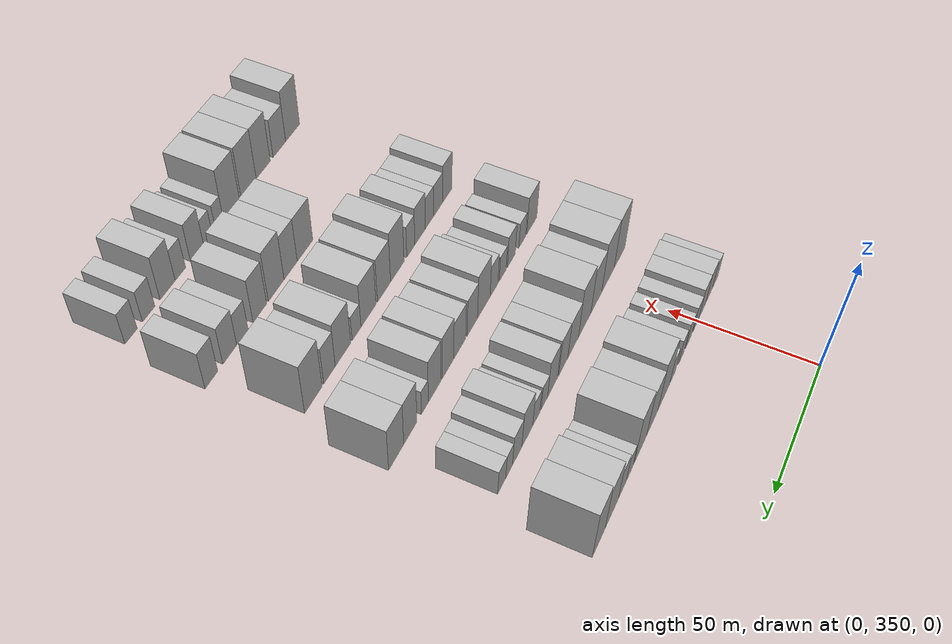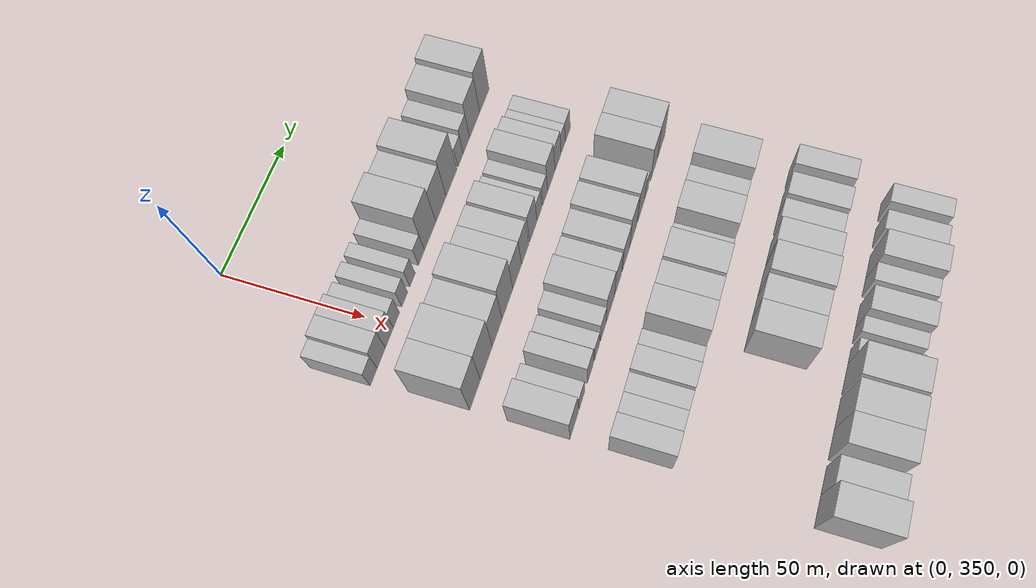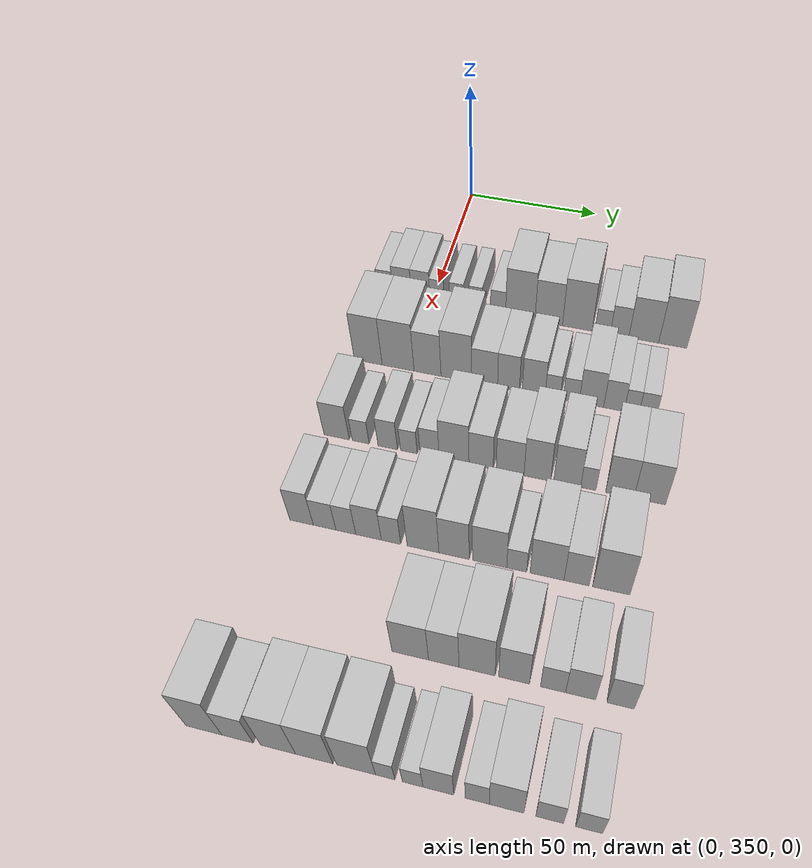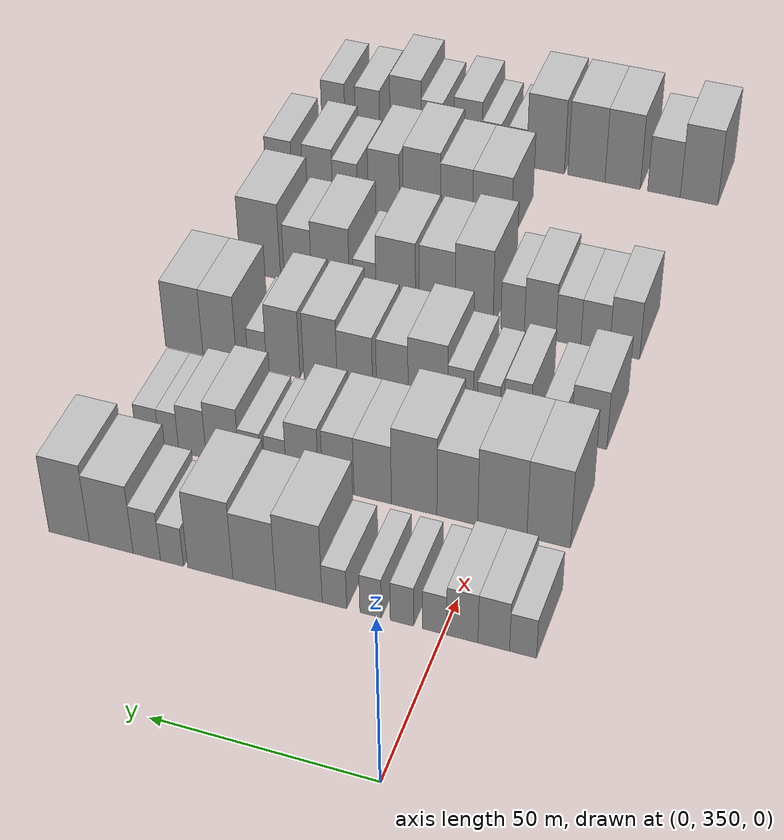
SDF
<sdf version="1.6">
 <world name="default">
  <model name="building_88">
   <static>1</static>
   <pose>50.0000 332.4617 0 0.000000 0.000000 0.000000</pose>
   <link name="link">
    <pose>0 0 6.00 0 0 0</pose>
    <collision name="collision"><geometry><box><size>20.0000 5.8812 12.0000</size></box></geometry></collision>
    <visual name="visual">
     <cast_shadows>0</cast_shadows>
     <geometry><box><size>20.0000 5.8812 12.0000</size></box></geometry>
     <material>
      <script>
       <uri>model://HANNAS_wall/materials/scripts</uri>
       <uri>model://HANNAS_wall/materials/textures</uri>
       <name>vrc/HANNAS_wall</name>
      </script>
     </material>
    </visual>
   </link>
  </model>
  <model name="building_89">
   <static>1</static>
   <pose>50.0000 338.8879 0 0.000000 0.000000 0.000000</pose>
   <link name="link">
    <pose>0 0 7.50 0 0 0</pose>
    <collision name="collision"><geometry><box><size>20.0000 6.9712 15.0000</size></box></geometry></collision>
    <visual name="visual">
     <cast_shadows>0</cast_shadows>
     <geometry><box><size>20.0000 6.9712 15.0000</size></box></geometry>
     <material>
      <script>
       <uri>model://HANNAS_wall/materials/scripts</uri>
       <uri>model://HANNAS_wall/materials/textures</uri>
       <name>vrc/HANNAS_wall</name>
      </script>
     </material>
    </visual>
   </link>
  </model>
  <model name="building_90">
   <static>1</static>
   <pose>50.0000 345.8396 0 0.000000 0.000000 0.000000</pose>
   <link name="link">
    <pose>0 0 7.50 0 0 0</pose>
    <collision name="collision"><geometry><box><size>20.0000 6.9321 15.0000</size></box></geometry></collision>
    <visual name="visual">
     <cast_shadows>0</cast_shadows>
     <geometry><box><size>20.0000 6.9321 15.0000</size></box></geometry>
     <material>
      <script>
       <uri>model://HANNAS_wall/materials/scripts</uri>
       <uri>model://HANNAS_wall/materials/textures</uri>
       <name>vrc/HANNAS_wall</name>
      </script>
     </material>
    </visual>
   </link>
  </model>
  <model name="building_91">
   <static>1</static>
   <pose>50.0000 351.9965 0 0.000000 0.000000 0.000000</pose>
   <link name="link">
    <pose>0 0 6.00 0 0 0</pose>
    <collision name="collision"><geometry><box><size>20.0000 5.3816 12.0000</size></box></geometry></collision>
    <visual name="visual">
     <cast_shadows>0</cast_shadows>
     <geometry><box><size>20.0000 5.3816 12.0000</size></box></geometry>
     <material>
      <script>
       <uri>model://HANNAS_wall/materials/scripts</uri>
       <uri>model://HANNAS_wall/materials/textures</uri>
       <name>vrc/HANNAS_wall</name>
      </script>
     </material>
    </visual>
   </link>
  </model>
  <model name="building_92">
   <static>1</static>
   <pose>50.0000 359.2964 0 0.000000 0.000000 0.000000</pose>
   <link name="link">
    <pose>0 0 6.00 0 0 0</pose>
    <collision name="collision"><geometry><box><size>20.0000 5.2183 12.0000</size></box></geometry></collision>
    <visual name="visual">
     <cast_shadows>0</cast_shadows>
     <geometry><box><size>20.0000 5.2183 12.0000</size></box></geometry>
     <material>
      <script>
       <uri>model://HANNAS_wall/materials/scripts</uri>
       <uri>model://HANNAS_wall/materials/textures</uri>
       <name>vrc/HANNAS_wall</name>
      </script>
     </material>
    </visual>
   </link>
  </model>
  <model name="building_93">
   <static>1</static>
   <pose>50.0000 366.3369 0 0.000000 0.000000 0.000000</pose>
   <link name="link">
    <pose>0 0 6.00 0 0 0</pose>
    <collision name="collision"><geometry><box><size>20.0000 4.8625 12.0000</size></box></geometry></collision>
    <visual name="visual">
     <cast_shadows>0</cast_shadows>
     <geometry><box><size>20.0000 4.8625 12.0000</size></box></geometry>
     <material>
      <script>
       <uri>model://HANNAS_wall/materials/scripts</uri>
       <uri>model://HANNAS_wall/materials/textures</uri>
       <name>vrc/HANNAS_wall</name>
      </script>
     </material>
    </visual>
   </link>
  </model>
  <model name="building_94">
   <static>1</static>
   <pose>50.0000 374.5605 0 0.000000 0.000000 0.000000</pose>
   <link name="link">
    <pose>0 0 6.00 0 0 0</pose>
    <collision name="collision"><geometry><box><size>20.0000 5.5847 12.0000</size></box></geometry></collision>
    <visual name="visual">
     <cast_shadows>0</cast_shadows>
     <geometry><box><size>20.0000 5.5847 12.0000</size></box></geometry>
     <material>
      <script>
       <uri>model://HANNAS_wall/materials/scripts</uri>
       <uri>model://HANNAS_wall/materials/textures</uri>
       <name>vrc/HANNAS_wall</name>
      </script>
     </material>
    </visual>
   </link>
  </model>
  <model name="building_95">
   <static>1</static>
   <pose>50.0000 382.7004 0 0.000000 0.000000 0.000000</pose>
   <link name="link">
    <pose>0 0 12.00 0 0 0</pose>
    <collision name="collision"><geometry><box><size>20.0000 10.6951 24.0000</size></box></geometry></collision>
    <visual name="visual">
     <cast_shadows>0</cast_shadows>
     <geometry><box><size>20.0000 10.6951 24.0000</size></box></geometry>
     <material>
      <script>
       <uri>model://HANNAS_wall/materials/scripts</uri>
       <uri>model://HANNAS_wall/materials/textures</uri>
       <name>vrc/HANNAS_wall</name>
      </script>
     </material>
    </visual>
   </link>
  </model>
  <model name="building_96">
   <static>1</static>
   <pose>50.0000 393.0219 0 0.000000 0.000000 0.000000</pose>
   <link name="link">
    <pose>0 0 10.50 0 0 0</pose>
    <collision name="collision"><geometry><box><size>20.0000 9.9479 21.0000</size></box></geometry></collision>
    <visual name="visual">
     <cast_shadows>0</cast_shadows>
     <geometry><box><size>20.0000 9.9479 21.0000</size></box></geometry>
     <material>
      <script>
       <uri>model://HANNAS_wall/materials/scripts</uri>
       <uri>model://HANNAS_wall/materials/textures</uri>
       <name>vrc/HANNAS_wall</name>
      </script>
     </material>
    </visual>
   </link>
  </model>
  <model name="building_97">
   <static>1</static>
   <pose>50.0000 403.3108 0 0.000000 0.000000 0.000000</pose>
   <link name="link">
    <pose>0 0 12.00 0 0 0</pose>
    <collision name="collision"><geometry><box><size>20.0000 10.6300 24.0000</size></box></geometry></collision>
    <visual name="visual">
     <cast_shadows>0</cast_shadows>
     <geometry><box><size>20.0000 10.6300 24.0000</size></box></geometry>
     <material>
      <script>
       <uri>model://HANNAS_wall/materials/scripts</uri>
       <uri>model://HANNAS_wall/materials/textures</uri>
       <name>vrc/HANNAS_wall</name>
      </script>
     </material>
    </visual>
   </link>
  </model>
  <model name="building_98">
   <static>1</static>
   <pose>50.0000 412.3672 0 0.000000 0.000000 0.000000</pose>
   <link name="link">
    <pose>0 0 6.00 0 0 0</pose>
    <collision name="collision"><geometry><box><size>20.0000 5.4829 12.0000</size></box></geometry></collision>
    <visual name="visual">
     <cast_shadows>0</cast_shadows>
     <geometry><box><size>20.0000 5.4829 12.0000</size></box></geometry>
     <material>
      <script>
       <uri>model://HANNAS_wall/materials/scripts</uri>
       <uri>model://HANNAS_wall/materials/textures</uri>
       <name>vrc/HANNAS_wall</name>
      </script>
     </material>
    </visual>
   </link>
  </model>
  <model name="building_99">
   <static>1</static>
   <pose>50.0000 418.3608 0 0.000000 0.000000 0.000000</pose>
   <link name="link">
    <pose>0 0 7.50 0 0 0</pose>
    <collision name="collision"><geometry><box><size>20.0000 6.5042 15.0000</size></box></geometry></collision>
    <visual name="visual">
     <cast_shadows>0</cast_shadows>
     <geometry><box><size>20.0000 6.5042 15.0000</size></box></geometry>
     <material>
      <script>
       <uri>model://HANNAS_wall/materials/scripts</uri>
       <uri>model://HANNAS_wall/materials/textures</uri>
       <name>vrc/HANNAS_wall</name>
      </script>
     </material>
    </visual>
   </link>
  </model>
  <model name="building_100">
   <static>1</static>
   <pose>50.0000 426.8564 0 0.000000 0.000000 0.000000</pose>
   <link name="link">
    <pose>0 0 10.50 0 0 0</pose>
    <collision name="collision"><geometry><box><size>20.0000 10.4868 21.0000</size></box></geometry></collision>
    <visual name="visual">
     <cast_shadows>0</cast_shadows>
     <geometry><box><size>20.0000 10.4868 21.0000</size></box></geometry>
     <material>
      <script>
       <uri>model://HANNAS_wall/materials/scripts</uri>
       <uri>model://HANNAS_wall/materials/textures</uri>
       <name>vrc/HANNAS_wall</name>
      </script>
     </material>
    </visual>
   </link>
  </model>
  <model name="building_101">
   <static>1</static>
   <pose>50.0000 437.0171 0 0.000000 0.000000 0.000000</pose>
   <link name="link">
    <pose>0 0 12.00 0 0 0</pose>
    <collision name="collision"><geometry><box><size>20.0000 9.8347 24.0000</size></box></geometry></collision>
    <visual name="visual">
     <cast_shadows>0</cast_shadows>
     <geometry><box><size>20.0000 9.8347 24.0000</size></box></geometry>
     <material>
      <script>
       <uri>model://HANNAS_wall/materials/scripts</uri>
       <uri>model://HANNAS_wall/materials/textures</uri>
       <name>vrc/HANNAS_wall</name>
      </script>
     </material>
    </visual>
   </link>
  </model>
  <model name="building_192">
   <static>1</static>
   <pose>82.0000 336.1384 0 0.000000 0.000000 0.000000</pose>
   <link name="link">
    <pose>0 0 12.00 0 0 0</pose>
    <collision name="collision"><geometry><box><size>20.0000 9.9993 24.0000</size></box></geometry></collision>
    <visual name="visual">
     <cast_shadows>0</cast_shadows>
     <geometry><box><size>20.0000 9.9993 24.0000</size></box></geometry>
     <material>
      <script>
       <uri>model://HANNAS_wall/materials/scripts</uri>
       <uri>model://HANNAS_wall/materials/textures</uri>
       <name>vrc/HANNAS_wall</name>
      </script>
     </material>
    </visual>
   </link>
  </model>
  <model name="building_193">
   <static>1</static>
   <pose>82.0000 346.8224 0 0.000000 0.000000 0.000000</pose>
   <link name="link">
    <pose>0 0 12.00 0 0 0</pose>
    <collision name="collision"><geometry><box><size>20.0000 11.3688 24.0000</size></box></geometry></collision>
    <visual name="visual">
     <cast_shadows>0</cast_shadows>
     <geometry><box><size>20.0000 11.3688 24.0000</size></box></geometry>
     <material>
      <script>
       <uri>model://HANNAS_wall/materials/scripts</uri>
       <uri>model://HANNAS_wall/materials/textures</uri>
       <name>vrc/HANNAS_wall</name>
      </script>
     </material>
    </visual>
   </link>
  </model>
  <model name="building_194">
   <static>1</static>
   <pose>82.0000 357.2764 0 0.000000 0.000000 0.000000</pose>
   <link name="link">
    <pose>0 0 10.50 0 0 0</pose>
    <collision name="collision"><geometry><box><size>20.0000 9.5392 21.0000</size></box></geometry></collision>
    <visual name="visual">
     <cast_shadows>0</cast_shadows>
     <geometry><box><size>20.0000 9.5392 21.0000</size></box></geometry>
     <material>
      <script>
       <uri>model://HANNAS_wall/materials/scripts</uri>
       <uri>model://HANNAS_wall/materials/textures</uri>
       <name>vrc/HANNAS_wall</name>
      </script>
     </material>
    </visual>
   </link>
  </model>
  <model name="building_195">
   <static>1</static>
   <pose>82.0000 367.4168 0 0.000000 0.000000 0.000000</pose>
   <link name="link">
    <pose>0 0 12.00 0 0 0</pose>
    <collision name="collision"><geometry><box><size>20.0000 10.7417 24.0000</size></box></geometry></collision>
    <visual name="visual">
     <cast_shadows>0</cast_shadows>
     <geometry><box><size>20.0000 10.7417 24.0000</size></box></geometry>
     <material>
      <script>
       <uri>model://HANNAS_wall/materials/scripts</uri>
       <uri>model://HANNAS_wall/materials/textures</uri>
       <name>vrc/HANNAS_wall</name>
      </script>
     </material>
    </visual>
   </link>
  </model>
  <model name="building_196">
   <static>1</static>
   <pose>82.0000 377.2480 0 0.000000 0.000000 0.000000</pose>
   <link name="link">
    <pose>0 0 9.00 0 0 0</pose>
    <collision name="collision"><geometry><box><size>20.0000 8.9206 18.0000</size></box></geometry></collision>
    <visual name="visual">
     <cast_shadows>0</cast_shadows>
     <geometry><box><size>20.0000 8.9206 18.0000</size></box></geometry>
     <material>
      <script>
       <uri>model://HANNAS_wall/materials/scripts</uri>
       <uri>model://HANNAS_wall/materials/textures</uri>
       <name>vrc/HANNAS_wall</name>
      </script>
     </material>
    </visual>
   </link>
  </model>
  <model name="building_197">
   <static>1</static>
   <pose>82.0000 385.4522 0 0.000000 0.000000 0.000000</pose>
   <link name="link">
    <pose>0 0 9.00 0 0 0</pose>
    <collision name="collision"><geometry><box><size>20.0000 7.4877 18.0000</size></box></geometry></collision>
    <visual name="visual">
     <cast_shadows>0</cast_shadows>
     <geometry><box><size>20.0000 7.4877 18.0000</size></box></geometry>
     <material>
      <script>
       <uri>model://HANNAS_wall/materials/scripts</uri>
       <uri>model://HANNAS_wall/materials/textures</uri>
       <name>vrc/HANNAS_wall</name>
      </script>
     </material>
    </visual>
   </link>
  </model>
  <model name="building_198">
   <static>1</static>
   <pose>82.0000 394.1133 0 0.000000 0.000000 0.000000</pose>
   <link name="link">
    <pose>0 0 9.00 0 0 0</pose>
    <collision name="collision"><geometry><box><size>20.0000 7.8347 18.0000</size></box></geometry></collision>
    <visual name="visual">
     <cast_shadows>0</cast_shadows>
     <geometry><box><size>20.0000 7.8347 18.0000</size></box></geometry>
     <material>
      <script>
       <uri>model://HANNAS_wall/materials/scripts</uri>
       <uri>model://HANNAS_wall/materials/textures</uri>
       <name>vrc/HANNAS_wall</name>
      </script>
     </material>
    </visual>
   </link>
  </model>
  <model name="building_199">
   <static>1</static>
   <pose>82.0000 400.5833 0 0.000000 0.000000 0.000000</pose>
   <link name="link">
    <pose>0 0 6.00 0 0 0</pose>
    <collision name="collision"><geometry><box><size>20.0000 5.1051 12.0000</size></box></geometry></collision>
    <visual name="visual">
     <cast_shadows>0</cast_shadows>
     <geometry><box><size>20.0000 5.1051 12.0000</size></box></geometry>
     <material>
      <script>
       <uri>model://HANNAS_wall/materials/scripts</uri>
       <uri>model://HANNAS_wall/materials/textures</uri>
       <name>vrc/HANNAS_wall</name>
      </script>
     </material>
    </visual>
   </link>
  </model>
  <model name="building_200">
   <static>1</static>
   <pose>82.0000 406.8288 0 0.000000 0.000000 0.000000</pose>
   <link name="link">
    <pose>0 0 6.00 0 0 0</pose>
    <collision name="collision"><geometry><box><size>20.0000 5.3860 12.0000</size></box></geometry></collision>
    <visual name="visual">
     <cast_shadows>0</cast_shadows>
     <geometry><box><size>20.0000 5.3860 12.0000</size></box></geometry>
     <material>
      <script>
       <uri>model://HANNAS_wall/materials/scripts</uri>
       <uri>model://HANNAS_wall/materials/textures</uri>
       <name>vrc/HANNAS_wall</name>
      </script>
     </material>
    </visual>
   </link>
  </model>
  <model name="building_201">
   <static>1</static>
   <pose>82.0000 413.6128 0 0.000000 0.000000 0.000000</pose>
   <link name="link">
    <pose>0 0 9.00 0 0 0</pose>
    <collision name="collision"><geometry><box><size>20.0000 8.1819 18.0000</size></box></geometry></collision>
    <visual name="visual">
     <cast_shadows>0</cast_shadows>
     <geometry><box><size>20.0000 8.1819 18.0000</size></box></geometry>
     <material>
      <script>
       <uri>model://HANNAS_wall/materials/scripts</uri>
       <uri>model://HANNAS_wall/materials/textures</uri>
       <name>vrc/HANNAS_wall</name>
      </script>
     </material>
    </visual>
   </link>
  </model>
  <model name="building_202">
   <static>1</static>
   <pose>82.0000 421.1309 0 0.000000 0.000000 0.000000</pose>
   <link name="link">
    <pose>0 0 7.50 0 0 0</pose>
    <collision name="collision"><geometry><box><size>20.0000 6.8543 15.0000</size></box></geometry></collision>
    <visual name="visual">
     <cast_shadows>0</cast_shadows>
     <geometry><box><size>20.0000 6.8543 15.0000</size></box></geometry>
     <material>
      <script>
       <uri>model://HANNAS_wall/materials/scripts</uri>
       <uri>model://HANNAS_wall/materials/textures</uri>
       <name>vrc/HANNAS_wall</name>
      </script>
     </material>
    </visual>
   </link>
  </model>
  <model name="building_203">
   <static>1</static>
   <pose>82.0000 426.9973 0 0.000000 0.000000 0.000000</pose>
   <link name="link">
    <pose>0 0 6.00 0 0 0</pose>
    <collision name="collision"><geometry><box><size>20.0000 4.8786 12.0000</size></box></geometry></collision>
    <visual name="visual">
     <cast_shadows>0</cast_shadows>
     <geometry><box><size>20.0000 4.8786 12.0000</size></box></geometry>
     <material>
      <script>
       <uri>model://HANNAS_wall/materials/scripts</uri>
       <uri>model://HANNAS_wall/materials/textures</uri>
       <name>vrc/HANNAS_wall</name>
      </script>
     </material>
    </visual>
   </link>
  </model>
  <model name="building_204">
   <static>1</static>
   <pose>82.0000 432.2888 0 0.000000 0.000000 0.000000</pose>
   <link name="link">
    <pose>0 0 6.00 0 0 0</pose>
    <collision name="collision"><geometry><box><size>20.0000 5.7044 12.0000</size></box></geometry></collision>
    <visual name="visual">
     <cast_shadows>0</cast_shadows>
     <geometry><box><size>20.0000 5.7044 12.0000</size></box></geometry>
     <material>
      <script>
       <uri>model://HANNAS_wall/materials/scripts</uri>
       <uri>model://HANNAS_wall/materials/textures</uri>
       <name>vrc/HANNAS_wall</name>
      </script>
     </material>
    </visual>
   </link>
  </model>
  <model name="building_313">
   <static>1</static>
   <pose>114.0000 335.7146 0 0.000000 0.000000 0.000000</pose>
   <link name="link">
    <pose>0 0 9.00 0 0 0</pose>
    <collision name="collision"><geometry><box><size>20.0000 8.5921 18.0000</size></box></geometry></collision>
    <visual name="visual">
     <cast_shadows>0</cast_shadows>
     <geometry><box><size>20.0000 8.5921 18.0000</size></box></geometry>
     <material>
      <script>
       <uri>model://HANNAS_wall/materials/scripts</uri>
       <uri>model://HANNAS_wall/materials/textures</uri>
       <name>vrc/HANNAS_wall</name>
      </script>
     </material>
    </visual>
   </link>
  </model>
  <model name="building_314">
   <static>1</static>
   <pose>114.0000 343.8473 0 0.000000 0.000000 0.000000</pose>
   <link name="link">
    <pose>0 0 6.00 0 0 0</pose>
    <collision name="collision"><geometry><box><size>20.0000 5.6732 12.0000</size></box></geometry></collision>
    <visual name="visual">
     <cast_shadows>0</cast_shadows>
     <geometry><box><size>20.0000 5.6732 12.0000</size></box></geometry>
     <material>
      <script>
       <uri>model://HANNAS_wall/materials/scripts</uri>
       <uri>model://HANNAS_wall/materials/textures</uri>
       <name>vrc/HANNAS_wall</name>
      </script>
     </material>
    </visual>
   </link>
  </model>
  <model name="building_315">
   <static>1</static>
   <pose>114.0000 352.9465 0 0.000000 0.000000 0.000000</pose>
   <link name="link">
    <pose>0 0 7.50 0 0 0</pose>
    <collision name="collision"><geometry><box><size>20.0000 6.5253 15.0000</size></box></geometry></collision>
    <visual name="visual">
     <cast_shadows>0</cast_shadows>
     <geometry><box><size>20.0000 6.5253 15.0000</size></box></geometry>
     <material>
      <script>
       <uri>model://HANNAS_wall/materials/scripts</uri>
       <uri>model://HANNAS_wall/materials/textures</uri>
       <name>vrc/HANNAS_wall</name>
      </script>
     </material>
    </visual>
   </link>
  </model>
  <model name="building_316">
   <static>1</static>
   <pose>114.0000 359.9876 0 0.000000 0.000000 0.000000</pose>
   <link name="link">
    <pose>0 0 6.00 0 0 0</pose>
    <collision name="collision"><geometry><box><size>20.0000 5.5569 12.0000</size></box></geometry></collision>
    <visual name="visual">
     <cast_shadows>0</cast_shadows>
     <geometry><box><size>20.0000 5.5569 12.0000</size></box></geometry>
     <material>
      <script>
       <uri>model://HANNAS_wall/materials/scripts</uri>
       <uri>model://HANNAS_wall/materials/textures</uri>
       <name>vrc/HANNAS_wall</name>
      </script>
     </material>
    </visual>
   </link>
  </model>
  <model name="building_317">
   <static>1</static>
   <pose>114.0000 366.8975 0 0.000000 0.000000 0.000000</pose>
   <link name="link">
    <pose>0 0 7.50 0 0 0</pose>
    <collision name="collision"><geometry><box><size>20.0000 6.2629 15.0000</size></box></geometry></collision>
    <visual name="visual">
     <cast_shadows>0</cast_shadows>
     <geometry><box><size>20.0000 6.2629 15.0000</size></box></geometry>
     <material>
      <script>
       <uri>model://HANNAS_wall/materials/scripts</uri>
       <uri>model://HANNAS_wall/materials/textures</uri>
       <name>vrc/HANNAS_wall</name>
      </script>
     </material>
    </visual>
   </link>
  </model>
  <model name="building_318">
   <static>1</static>
   <pose>114.0000 374.9000 0 0.000000 0.000000 0.000000</pose>
   <link name="link">
    <pose>0 0 10.50 0 0 0</pose>
    <collision name="collision"><geometry><box><size>20.0000 9.7422 21.0000</size></box></geometry></collision>
    <visual name="visual">
     <cast_shadows>0</cast_shadows>
     <geometry><box><size>20.0000 9.7422 21.0000</size></box></geometry>
     <material>
      <script>
       <uri>model://HANNAS_wall/materials/scripts</uri>
       <uri>model://HANNAS_wall/materials/textures</uri>
       <name>vrc/HANNAS_wall</name>
      </script>
     </material>
    </visual>
   </link>
  </model>
  <model name="building_319">
   <static>1</static>
   <pose>114.0000 383.6989 0 0.000000 0.000000 0.000000</pose>
   <link name="link">
    <pose>0 0 9.00 0 0 0</pose>
    <collision name="collision"><geometry><box><size>20.0000 7.8556 18.0000</size></box></geometry></collision>
    <visual name="visual">
     <cast_shadows>0</cast_shadows>
     <geometry><box><size>20.0000 7.8556 18.0000</size></box></geometry>
     <material>
      <script>
       <uri>model://HANNAS_wall/materials/scripts</uri>
       <uri>model://HANNAS_wall/materials/textures</uri>
       <name>vrc/HANNAS_wall</name>
      </script>
     </material>
    </visual>
   </link>
  </model>
  <model name="building_320">
   <static>1</static>
   <pose>114.0000 393.0754 0 0.000000 0.000000 0.000000</pose>
   <link name="link">
    <pose>0 0 9.00 0 0 0</pose>
    <collision name="collision"><geometry><box><size>20.0000 8.8974 18.0000</size></box></geometry></collision>
    <visual name="visual">
     <cast_shadows>0</cast_shadows>
     <geometry><box><size>20.0000 8.8974 18.0000</size></box></geometry>
     <material>
      <script>
       <uri>model://HANNAS_wall/materials/scripts</uri>
       <uri>model://HANNAS_wall/materials/textures</uri>
       <name>vrc/HANNAS_wall</name>
      </script>
     </material>
    </visual>
   </link>
  </model>
  <model name="building_321">
   <static>1</static>
   <pose>114.0000 401.7678 0 0.000000 0.000000 0.000000</pose>
   <link name="link">
    <pose>0 0 10.50 0 0 0</pose>
    <collision name="collision"><geometry><box><size>20.0000 8.4874 21.0000</size></box></geometry></collision>
    <visual name="visual">
     <cast_shadows>0</cast_shadows>
     <geometry><box><size>20.0000 8.4874 21.0000</size></box></geometry>
     <material>
      <script>
       <uri>model://HANNAS_wall/materials/scripts</uri>
       <uri>model://HANNAS_wall/materials/textures</uri>
       <name>vrc/HANNAS_wall</name>
      </script>
     </material>
    </visual>
   </link>
  </model>
  <model name="building_322">
   <static>1</static>
   <pose>114.0000 411.2692 0 0.000000 0.000000 0.000000</pose>
   <link name="link">
    <pose>0 0 10.50 0 0 0</pose>
    <collision name="collision"><geometry><box><size>20.0000 8.5153 21.0000</size></box></geometry></collision>
    <visual name="visual">
     <cast_shadows>0</cast_shadows>
     <geometry><box><size>20.0000 8.5153 21.0000</size></box></geometry>
     <material>
      <script>
       <uri>model://HANNAS_wall/materials/scripts</uri>
       <uri>model://HANNAS_wall/materials/textures</uri>
       <name>vrc/HANNAS_wall</name>
      </script>
     </material>
    </visual>
   </link>
  </model>
  <model name="building_323">
   <static>1</static>
   <pose>114.0000 417.9303 0 0.000000 0.000000 0.000000</pose>
   <link name="link">
    <pose>0 0 6.00 0 0 0</pose>
    <collision name="collision"><geometry><box><size>20.0000 4.8069 12.0000</size></box></geometry></collision>
    <visual name="visual">
     <cast_shadows>0</cast_shadows>
     <geometry><box><size>20.0000 4.8069 12.0000</size></box></geometry>
     <material>
      <script>
       <uri>model://HANNAS_wall/materials/scripts</uri>
       <uri>model://HANNAS_wall/materials/textures</uri>
       <name>vrc/HANNAS_wall</name>
      </script>
     </material>
    </visual>
   </link>
  </model>
  <model name="building_324">
   <static>1</static>
   <pose>114.0000 427.7049 0 0.000000 0.000000 0.000000</pose>
   <link name="link">
    <pose>0 0 10.50 0 0 0</pose>
    <collision name="collision"><geometry><box><size>20.0000 8.7421 21.0000</size></box></geometry></collision>
    <visual name="visual">
     <cast_shadows>0</cast_shadows>
     <geometry><box><size>20.0000 8.7421 21.0000</size></box></geometry>
     <material>
      <script>
       <uri>model://HANNAS_wall/materials/scripts</uri>
       <uri>model://HANNAS_wall/materials/textures</uri>
       <name>vrc/HANNAS_wall</name>
      </script>
     </material>
    </visual>
   </link>
  </model>
  <model name="building_325">
   <static>1</static>
   <pose>114.0000 436.9769 0 0.000000 0.000000 0.000000</pose>
   <link name="link">
    <pose>0 0 10.50 0 0 0</pose>
    <collision name="collision"><geometry><box><size>20.0000 9.8019 21.0000</size></box></geometry></collision>
    <visual name="visual">
     <cast_shadows>0</cast_shadows>
     <geometry><box><size>20.0000 9.8019 21.0000</size></box></geometry>
     <material>
      <script>
       <uri>model://HANNAS_wall/materials/scripts</uri>
       <uri>model://HANNAS_wall/materials/textures</uri>
       <name>vrc/HANNAS_wall</name>
      </script>
     </material>
    </visual>
   </link>
  </model>
  <model name="building_438">
   <static>1</static>
   <pose>146.0000 335.5271 0 0.000000 0.000000 0.000000</pose>
   <link name="link">
    <pose>0 0 9.00 0 0 0</pose>
    <collision name="collision"><geometry><box><size>20.0000 7.4844 18.0000</size></box></geometry></collision>
    <visual name="visual">
     <cast_shadows>0</cast_shadows>
     <geometry><box><size>20.0000 7.4844 18.0000</size></box></geometry>
     <material>
      <script>
       <uri>model://HANNAS_wall/materials/scripts</uri>
       <uri>model://HANNAS_wall/materials/textures</uri>
       <name>vrc/HANNAS_wall</name>
      </script>
     </material>
    </visual>
   </link>
  </model>
  <model name="building_439">
   <static>1</static>
   <pose>146.0000 342.8704 0 0.000000 0.000000 0.000000</pose>
   <link name="link">
    <pose>0 0 7.50 0 0 0</pose>
    <collision name="collision"><geometry><box><size>20.0000 7.2023 15.0000</size></box></geometry></collision>
    <visual name="visual">
     <cast_shadows>0</cast_shadows>
     <geometry><box><size>20.0000 7.2023 15.0000</size></box></geometry>
     <material>
      <script>
       <uri>model://HANNAS_wall/materials/scripts</uri>
       <uri>model://HANNAS_wall/materials/textures</uri>
       <name>vrc/HANNAS_wall</name>
      </script>
     </material>
    </visual>
   </link>
  </model>
  <model name="building_440">
   <static>1</static>
   <pose>146.0000 349.6117 0 0.000000 0.000000 0.000000</pose>
   <link name="link">
    <pose>0 0 7.50 0 0 0</pose>
    <collision name="collision"><geometry><box><size>20.0000 6.2802 15.0000</size></box></geometry></collision>
    <visual name="visual">
     <cast_shadows>0</cast_shadows>
     <geometry><box><size>20.0000 6.2802 15.0000</size></box></geometry>
     <material>
      <script>
       <uri>model://HANNAS_wall/materials/scripts</uri>
       <uri>model://HANNAS_wall/materials/textures</uri>
       <name>vrc/HANNAS_wall</name>
      </script>
     </material>
    </visual>
   </link>
  </model>
  <model name="building_441">
   <static>1</static>
   <pose>146.0000 356.7561 0 0.000000 0.000000 0.000000</pose>
   <link name="link">
    <pose>0 0 9.00 0 0 0</pose>
    <collision name="collision"><geometry><box><size>20.0000 8.0086 18.0000</size></box></geometry></collision>
    <visual name="visual">
     <cast_shadows>0</cast_shadows>
     <geometry><box><size>20.0000 8.0086 18.0000</size></box></geometry>
     <material>
      <script>
       <uri>model://HANNAS_wall/materials/scripts</uri>
       <uri>model://HANNAS_wall/materials/textures</uri>
       <name>vrc/HANNAS_wall</name>
      </script>
     </material>
    </visual>
   </link>
  </model>
  <model name="building_442">
   <static>1</static>
   <pose>146.0000 363.7714 0 0.000000 0.000000 0.000000</pose>
   <link name="link">
    <pose>0 0 7.50 0 0 0</pose>
    <collision name="collision"><geometry><box><size>20.0000 6.0221 15.0000</size></box></geometry></collision>
    <visual name="visual">
     <cast_shadows>0</cast_shadows>
     <geometry><box><size>20.0000 6.0221 15.0000</size></box></geometry>
     <material>
      <script>
       <uri>model://HANNAS_wall/materials/scripts</uri>
       <uri>model://HANNAS_wall/materials/textures</uri>
       <name>vrc/HANNAS_wall</name>
      </script>
     </material>
    </visual>
   </link>
  </model>
  <model name="building_443">
   <static>1</static>
   <pose>146.0000 373.6614 0 0.000000 0.000000 0.000000</pose>
   <link name="link">
    <pose>0 0 12.00 0 0 0</pose>
    <collision name="collision"><geometry><box><size>20.0000 9.7578 24.0000</size></box></geometry></collision>
    <visual name="visual">
     <cast_shadows>0</cast_shadows>
     <geometry><box><size>20.0000 9.7578 24.0000</size></box></geometry>
     <material>
      <script>
       <uri>model://HANNAS_wall/materials/scripts</uri>
       <uri>model://HANNAS_wall/materials/textures</uri>
       <name>vrc/HANNAS_wall</name>
      </script>
     </material>
    </visual>
   </link>
  </model>
  <model name="building_444">
   <static>1</static>
   <pose>146.0000 383.1697 0 0.000000 0.000000 0.000000</pose>
   <link name="link">
    <pose>0 0 10.50 0 0 0</pose>
    <collision name="collision"><geometry><box><size>20.0000 9.2587 21.0000</size></box></geometry></collision>
    <visual name="visual">
     <cast_shadows>0</cast_shadows>
     <geometry><box><size>20.0000 9.2587 21.0000</size></box></geometry>
     <material>
      <script>
       <uri>model://HANNAS_wall/materials/scripts</uri>
       <uri>model://HANNAS_wall/materials/textures</uri>
       <name>vrc/HANNAS_wall</name>
      </script>
     </material>
    </visual>
   </link>
  </model>
  <model name="building_445">
   <static>1</static>
   <pose>146.0000 393.9554 0 0.000000 0.000000 0.000000</pose>
   <link name="link">
    <pose>0 0 10.50 0 0 0</pose>
    <collision name="collision"><geometry><box><size>20.0000 10.3127 21.0000</size></box></geometry></collision>
    <visual name="visual">
     <cast_shadows>0</cast_shadows>
     <geometry><box><size>20.0000 10.3127 21.0000</size></box></geometry>
     <material>
      <script>
       <uri>model://HANNAS_wall/materials/scripts</uri>
       <uri>model://HANNAS_wall/materials/textures</uri>
       <name>vrc/HANNAS_wall</name>
      </script>
     </material>
    </visual>
   </link>
  </model>
  <model name="building_446">
   <static>1</static>
   <pose>146.0000 402.0879 0 0.000000 0.000000 0.000000</pose>
   <link name="link">
    <pose>0 0 6.00 0 0 0</pose>
    <collision name="collision"><geometry><box><size>20.0000 5.9524 12.0000</size></box></geometry></collision>
    <visual name="visual">
     <cast_shadows>0</cast_shadows>
     <geometry><box><size>20.0000 5.9524 12.0000</size></box></geometry>
     <material>
      <script>
       <uri>model://HANNAS_wall/materials/scripts</uri>
       <uri>model://HANNAS_wall/materials/textures</uri>
       <name>vrc/HANNAS_wall</name>
      </script>
     </material>
    </visual>
   </link>
  </model>
  <model name="building_447">
   <static>1</static>
   <pose>146.0000 411.0964 0 0.000000 0.000000 0.000000</pose>
   <link name="link">
    <pose>0 0 10.50 0 0 0</pose>
    <collision name="collision"><geometry><box><size>20.0000 10.0645 21.0000</size></box></geometry></collision>
    <visual name="visual">
     <cast_shadows>0</cast_shadows>
     <geometry><box><size>20.0000 10.0645 21.0000</size></box></geometry>
     <material>
      <script>
       <uri>model://HANNAS_wall/materials/scripts</uri>
       <uri>model://HANNAS_wall/materials/textures</uri>
       <name>vrc/HANNAS_wall</name>
      </script>
     </material>
    </visual>
   </link>
  </model>
  <model name="building_448">
   <static>1</static>
   <pose>146.0000 419.8108 0 0.000000 0.000000 0.000000</pose>
   <link name="link">
    <pose>0 0 9.00 0 0 0</pose>
    <collision name="collision"><geometry><box><size>20.0000 7.3644 18.0000</size></box></geometry></collision>
    <visual name="visual">
     <cast_shadows>0</cast_shadows>
     <geometry><box><size>20.0000 7.3644 18.0000</size></box></geometry>
     <material>
      <script>
       <uri>model://HANNAS_wall/materials/scripts</uri>
       <uri>model://HANNAS_wall/materials/textures</uri>
       <name>vrc/HANNAS_wall</name>
      </script>
     </material>
    </visual>
   </link>
  </model>
  <model name="building_449">
   <static>1</static>
   <pose>146.0000 429.9164 0 0.000000 0.000000 0.000000</pose>
   <link name="link">
    <pose>0 0 12.00 0 0 0</pose>
    <collision name="collision"><geometry><box><size>20.0000 10.8467 24.0000</size></box></geometry></collision>
    <visual name="visual">
     <cast_shadows>0</cast_shadows>
     <geometry><box><size>20.0000 10.8467 24.0000</size></box></geometry>
     <material>
      <script>
       <uri>model://HANNAS_wall/materials/scripts</uri>
       <uri>model://HANNAS_wall/materials/textures</uri>
       <name>vrc/HANNAS_wall</name>
      </script>
     </material>
    </visual>
   </link>
  </model>
  <model name="building_563">
   <static>1</static>
   <pose>178.0000 379.0043 0 0.000000 0.000000 0.000000</pose>
   <link name="link">
    <pose>0 0 10.50 0 0 0</pose>
    <collision name="collision"><geometry><box><size>20.0000 10.4760 21.0000</size></box></geometry></collision>
    <visual name="visual">
     <cast_shadows>0</cast_shadows>
     <geometry><box><size>20.0000 10.4760 21.0000</size></box></geometry>
     <material>
      <script>
       <uri>model://HANNAS_wall/materials/scripts</uri>
       <uri>model://HANNAS_wall/materials/textures</uri>
       <name>vrc/HANNAS_wall</name>
      </script>
     </material>
    </visual>
   </link>
  </model>
  <model name="building_564">
   <static>1</static>
   <pose>178.0000 388.5711 0 0.000000 0.000000 0.000000</pose>
   <link name="link">
    <pose>0 0 10.50 0 0 0</pose>
    <collision name="collision"><geometry><box><size>20.0000 8.6576 21.0000</size></box></geometry></collision>
    <visual name="visual">
     <cast_shadows>0</cast_shadows>
     <geometry><box><size>20.0000 8.6576 21.0000</size></box></geometry>
     <material>
      <script>
       <uri>model://HANNAS_wall/materials/scripts</uri>
       <uri>model://HANNAS_wall/materials/textures</uri>
       <name>vrc/HANNAS_wall</name>
      </script>
     </material>
    </visual>
   </link>
  </model>
  <model name="building_565">
   <static>1</static>
   <pose>178.0000 397.9500 0 0.000000 0.000000 0.000000</pose>
   <link name="link">
    <pose>0 0 12.00 0 0 0</pose>
    <collision name="collision"><geometry><box><size>20.0000 10.1002 24.0000</size></box></geometry></collision>
    <visual name="visual">
     <cast_shadows>0</cast_shadows>
     <geometry><box><size>20.0000 10.1002 24.0000</size></box></geometry>
     <material>
      <script>
       <uri>model://HANNAS_wall/materials/scripts</uri>
       <uri>model://HANNAS_wall/materials/textures</uri>
       <name>vrc/HANNAS_wall</name>
      </script>
     </material>
    </visual>
   </link>
  </model>
  <model name="building_566">
   <static>1</static>
   <pose>178.0000 408.2649 0 0.000000 0.000000 0.000000</pose>
   <link name="link">
    <pose>0 0 10.50 0 0 0</pose>
    <collision name="collision"><geometry><box><size>20.0000 8.5295 21.0000</size></box></geometry></collision>
    <visual name="visual">
     <cast_shadows>0</cast_shadows>
     <geometry><box><size>20.0000 8.5295 21.0000</size></box></geometry>
     <material>
      <script>
       <uri>model://HANNAS_wall/materials/scripts</uri>
       <uri>model://HANNAS_wall/materials/textures</uri>
       <name>vrc/HANNAS_wall</name>
      </script>
     </material>
    </visual>
   </link>
  </model>
  <model name="building_567">
   <static>1</static>
   <pose>178.0000 418.9660 0 0.000000 0.000000 0.000000</pose>
   <link name="link">
    <pose>0 0 7.50 0 0 0</pose>
    <collision name="collision"><geometry><box><size>20.0000 6.8728 15.0000</size></box></geometry></collision>
    <visual name="visual">
     <cast_shadows>0</cast_shadows>
     <geometry><box><size>20.0000 6.8728 15.0000</size></box></geometry>
     <material>
      <script>
       <uri>model://HANNAS_wall/materials/scripts</uri>
       <uri>model://HANNAS_wall/materials/textures</uri>
       <name>vrc/HANNAS_wall</name>
      </script>
     </material>
    </visual>
   </link>
  </model>
  <model name="building_568">
   <static>1</static>
   <pose>178.0000 426.4943 0 0.000000 0.000000 0.000000</pose>
   <link name="link">
    <pose>0 0 9.00 0 0 0</pose>
    <collision name="collision"><geometry><box><size>20.0000 8.1839 18.0000</size></box></geometry></collision>
    <visual name="visual">
     <cast_shadows>0</cast_shadows>
     <geometry><box><size>20.0000 8.1839 18.0000</size></box></geometry>
     <material>
      <script>
       <uri>model://HANNAS_wall/materials/scripts</uri>
       <uri>model://HANNAS_wall/materials/textures</uri>
       <name>vrc/HANNAS_wall</name>
      </script>
     </material>
    </visual>
   </link>
  </model>
  <model name="building_569">
   <static>1</static>
   <pose>178.0000 437.2561 0 0.000000 0.000000 0.000000</pose>
   <link name="link">
    <pose>0 0 9.00 0 0 0</pose>
    <collision name="collision"><geometry><box><size>20.0000 7.3395 18.0000</size></box></geometry></collision>
    <visual name="visual">
     <cast_shadows>0</cast_shadows>
     <geometry><box><size>20.0000 7.3395 18.0000</size></box></geometry>
     <material>
      <script>
       <uri>model://HANNAS_wall/materials/scripts</uri>
       <uri>model://HANNAS_wall/materials/textures</uri>
       <name>vrc/HANNAS_wall</name>
      </script>
     </material>
    </visual>
   </link>
  </model>
  <model name="building_681">
   <static>1</static>
   <pose>210.0000 332.0652 0 0.000000 0.000000 0.000000</pose>
   <link name="link">
    <pose>0 0 12.00 0 0 0</pose>
    <collision name="collision"><geometry><box><size>20.0000 10.0618 24.0000</size></box></geometry></collision>
    <visual name="visual">
     <cast_shadows>0</cast_shadows>
     <geometry><box><size>20.0000 10.0618 24.0000</size></box></geometry>
     <material>
      <script>
       <uri>model://HANNAS_wall/materials/scripts</uri>
       <uri>model://HANNAS_wall/materials/textures</uri>
       <name>vrc/HANNAS_wall</name>
      </script>
     </material>
    </visual>
   </link>
  </model>
  <model name="building_682">
   <static>1</static>
   <pose>210.0000 341.4953 0 0.000000 0.000000 0.000000</pose>
   <link name="link">
    <pose>0 0 9.00 0 0 0</pose>
    <collision name="collision"><geometry><box><size>20.0000 8.7985 18.0000</size></box></geometry></collision>
    <visual name="visual">
     <cast_shadows>0</cast_shadows>
     <geometry><box><size>20.0000 8.7985 18.0000</size></box></geometry>
     <material>
      <script>
       <uri>model://HANNAS_wall/materials/scripts</uri>
       <uri>model://HANNAS_wall/materials/textures</uri>
       <name>vrc/HANNAS_wall</name>
      </script>
     </material>
    </visual>
   </link>
  </model>
  <model name="building_683">
   <static>1</static>
   <pose>210.0000 352.7151 0 0.000000 0.000000 0.000000</pose>
   <link name="link">
    <pose>0 0 12.00 0 0 0</pose>
    <collision name="collision"><geometry><box><size>20.0000 9.6411 24.0000</size></box></geometry></collision>
    <visual name="visual">
     <cast_shadows>0</cast_shadows>
     <geometry><box><size>20.0000 9.6411 24.0000</size></box></geometry>
     <material>
      <script>
       <uri>model://HANNAS_wall/materials/scripts</uri>
       <uri>model://HANNAS_wall/materials/textures</uri>
       <name>vrc/HANNAS_wall</name>
      </script>
     </material>
    </visual>
   </link>
  </model>
  <model name="building_684">
   <static>1</static>
   <pose>210.0000 362.6150 0 0.000000 0.000000 0.000000</pose>
   <link name="link">
    <pose>0 0 12.00 0 0 0</pose>
    <collision name="collision"><geometry><box><size>20.0000 10.1588 24.0000</size></box></geometry></collision>
    <visual name="visual">
     <cast_shadows>0</cast_shadows>
     <geometry><box><size>20.0000 10.1588 24.0000</size></box></geometry>
     <material>
      <script>
       <uri>model://HANNAS_wall/materials/scripts</uri>
       <uri>model://HANNAS_wall/materials/textures</uri>
       <name>vrc/HANNAS_wall</name>
      </script>
     </material>
    </visual>
   </link>
  </model>
  <model name="building_685">
   <static>1</static>
   <pose>210.0000 373.9242 0 0.000000 0.000000 0.000000</pose>
   <link name="link">
    <pose>0 0 12.00 0 0 0</pose>
    <collision name="collision"><geometry><box><size>20.0000 10.4596 24.0000</size></box></geometry></collision>
    <visual name="visual">
     <cast_shadows>0</cast_shadows>
     <geometry><box><size>20.0000 10.4596 24.0000</size></box></geometry>
     <material>
      <script>
       <uri>model://HANNAS_wall/materials/scripts</uri>
       <uri>model://HANNAS_wall/materials/textures</uri>
       <name>vrc/HANNAS_wall</name>
      </script>
     </material>
    </visual>
   </link>
  </model>
  <model name="building_686">
   <static>1</static>
   <pose>210.0000 381.7089 0 0.000000 0.000000 0.000000</pose>
   <link name="link">
    <pose>0 0 6.00 0 0 0</pose>
    <collision name="collision"><geometry><box><size>20.0000 5.1097 12.0000</size></box></geometry></collision>
    <visual name="visual">
     <cast_shadows>0</cast_shadows>
     <geometry><box><size>20.0000 5.1097 12.0000</size></box></geometry>
     <material>
      <script>
       <uri>model://HANNAS_wall/materials/scripts</uri>
       <uri>model://HANNAS_wall/materials/textures</uri>
       <name>vrc/HANNAS_wall</name>
      </script>
     </material>
    </visual>
   </link>
  </model>
  <model name="building_687">
   <static>1</static>
   <pose>210.0000 388.9722 0 0.000000 0.000000 0.000000</pose>
   <link name="link">
    <pose>0 0 6.00 0 0 0</pose>
    <collision name="collision"><geometry><box><size>20.0000 5.4169 12.0000</size></box></geometry></collision>
    <visual name="visual">
     <cast_shadows>0</cast_shadows>
     <geometry><box><size>20.0000 5.4169 12.0000</size></box></geometry>
     <material>
      <script>
       <uri>model://HANNAS_wall/materials/scripts</uri>
       <uri>model://HANNAS_wall/materials/textures</uri>
       <name>vrc/HANNAS_wall</name>
      </script>
     </material>
    </visual>
   </link>
  </model>
  <model name="building_688">
   <static>1</static>
   <pose>210.0000 395.6838 0 0.000000 0.000000 0.000000</pose>
   <link name="link">
    <pose>0 0 9.00 0 0 0</pose>
    <collision name="collision"><geometry><box><size>20.0000 8.0063 18.0000</size></box></geometry></collision>
    <visual name="visual">
     <cast_shadows>0</cast_shadows>
     <geometry><box><size>20.0000 8.0063 18.0000</size></box></geometry>
     <material>
      <script>
       <uri>model://HANNAS_wall/materials/scripts</uri>
       <uri>model://HANNAS_wall/materials/textures</uri>
       <name>vrc/HANNAS_wall</name>
      </script>
     </material>
    </visual>
   </link>
  </model>
  <model name="building_689">
   <static>1</static>
   <pose>210.0000 405.7731 0 0.000000 0.000000 0.000000</pose>
   <link name="link">
    <pose>0 0 7.50 0 0 0</pose>
    <collision name="collision"><geometry><box><size>20.0000 6.1722 15.0000</size></box></geometry></collision>
    <visual name="visual">
     <cast_shadows>0</cast_shadows>
     <geometry><box><size>20.0000 6.1722 15.0000</size></box></geometry>
     <material>
      <script>
       <uri>model://HANNAS_wall/materials/scripts</uri>
       <uri>model://HANNAS_wall/materials/textures</uri>
       <name>vrc/HANNAS_wall</name>
      </script>
     </material>
    </visual>
   </link>
  </model>
  <model name="building_690">
   <static>1</static>
   <pose>210.0000 413.2866 0 0.000000 0.000000 0.000000</pose>
   <link name="link">
    <pose>0 0 10.50 0 0 0</pose>
    <collision name="collision"><geometry><box><size>20.0000 8.8548 21.0000</size></box></geometry></collision>
    <visual name="visual">
     <cast_shadows>0</cast_shadows>
     <geometry><box><size>20.0000 8.8548 21.0000</size></box></geometry>
     <material>
      <script>
       <uri>model://HANNAS_wall/materials/scripts</uri>
       <uri>model://HANNAS_wall/materials/textures</uri>
       <name>vrc/HANNAS_wall</name>
      </script>
     </material>
    </visual>
   </link>
  </model>
  <model name="building_691">
   <static>1</static>
   <pose>210.0000 424.2121 0 0.000000 0.000000 0.000000</pose>
   <link name="link">
    <pose>0 0 7.50 0 0 0</pose>
    <collision name="collision"><geometry><box><size>20.0000 6.9963 15.0000</size></box></geometry></collision>
    <visual name="visual">
     <cast_shadows>0</cast_shadows>
     <geometry><box><size>20.0000 6.9963 15.0000</size></box></geometry>
     <material>
      <script>
       <uri>model://HANNAS_wall/materials/scripts</uri>
       <uri>model://HANNAS_wall/materials/textures</uri>
       <name>vrc/HANNAS_wall</name>
      </script>
     </material>
    </visual>
   </link>
  </model>
  <model name="building_692">
   <static>1</static>
   <pose>210.0000 434.0876 0 0.000000 0.000000 0.000000</pose>
   <link name="link">
    <pose>0 0 7.50 0 0 0</pose>
    <collision name="collision"><geometry><box><size>20.0000 6.7548 15.0000</size></box></geometry></collision>
    <visual name="visual">
     <cast_shadows>0</cast_shadows>
     <geometry><box><size>20.0000 6.7548 15.0000</size></box></geometry>
     <material>
      <script>
       <uri>model://HANNAS_wall/materials/scripts</uri>
       <uri>model://HANNAS_wall/materials/textures</uri>
       <name>vrc/HANNAS_wall</name>
      </script>
     </material>
    </visual>
   </link>
  </model>
 </world>
</sdf>
